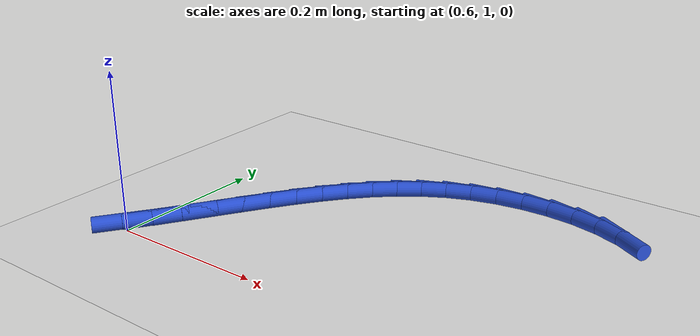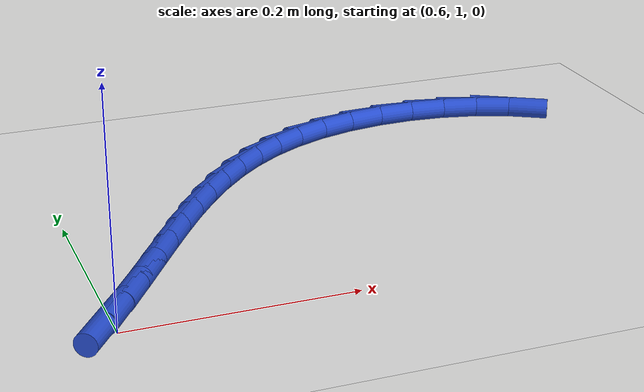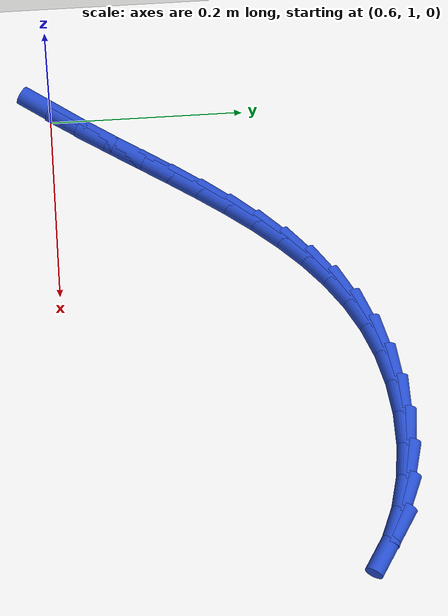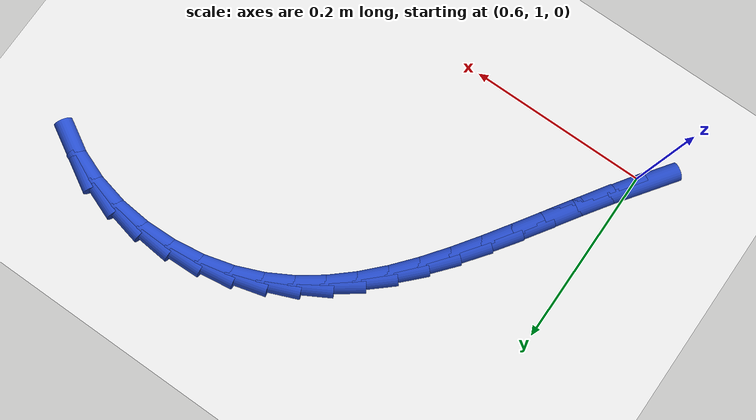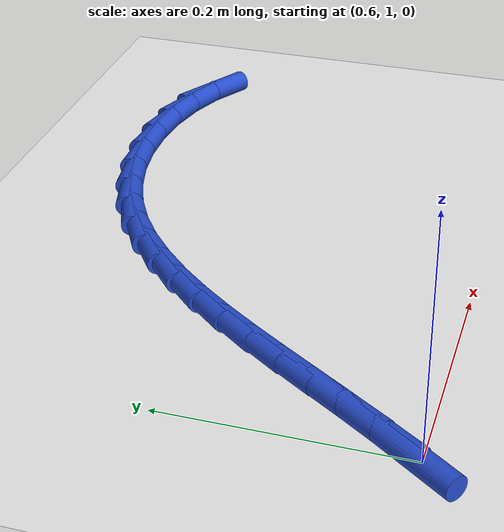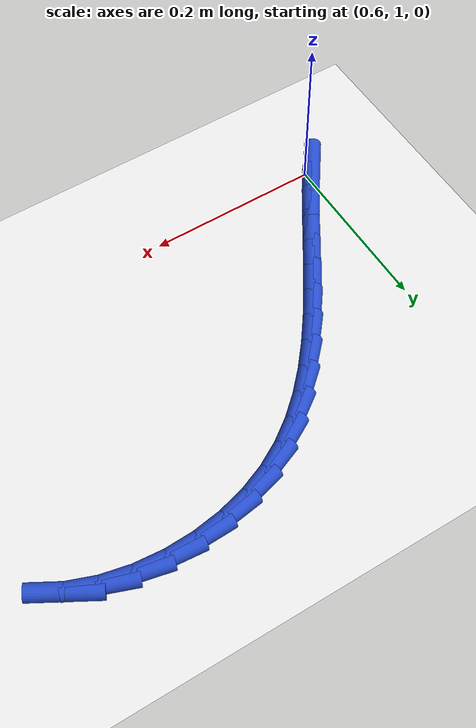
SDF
<sdf version="1.6">
 <world name="default">
  <model name="ground_plane">
   <static>1</static>
   <link name="link">
    <collision name="collision">
     <geometry><plane><normal>0 0 1</normal><size>100 100</size></plane></geometry>
     <surface><friction><ode><mu>100</mu><mu2>50</mu2></ode></friction></surface>
    </collision>
    <visual name="visual">
     <cast_shadows>0</cast_shadows>
     <geometry><plane><normal>0 0 1</normal><size>100 100</size></plane></geometry>
     <material>
      <script><uri>file://media/materials/scripts/gazebo.material</uri><name>Gazebo/WhiteGlow</name></script>
     </material>
    </visual>
   </link>
  </model>
  <model name="line">
   <link name="link_36">
    <pose>0.5934363363102734 1.0043362658631592 0.01 0 1.57 0.9493742972569054</pose>
    <collision name="collision">
     <geometry><cylinder><radius>0.01</radius><length>0.08</length></cylinder></geometry>
    </collision>
    <visual name="visual">
     <material>
      <script><name>Gazebo/Blue</name><uri>file://media/materials/scripts/gazebo.material</uri></script>
     </material>
     <geometry><cylinder><radius>0.01</radius><length>0.08</length></cylinder></geometry>
    </visual>
   </link>
   <link name="link_37">
    <pose>0.6140284195388198 1.0330938299409567 0.01 0 1.57 0.9768027827212767</pose>
    <collision name="collision">
     <geometry><cylinder><radius>0.01</radius><length>0.08</length></cylinder></geometry>
    </collision>
    <visual name="visual">
     <material>
      <script><name>Gazebo/Blue</name><uri>file://media/materials/scripts/gazebo.material</uri></script>
     </material>
     <geometry><cylinder><radius>0.01</radius><length>0.08</length></cylinder></geometry>
    </visual>
   </link>
   <link name="link_38">
    <pose>0.6339141229431926 1.062538643202508 0.01 0 1.57 0.9916264712208274</pose>
    <collision name="collision">
     <geometry><cylinder><radius>0.01</radius><length>0.08</length></cylinder></geometry>
    </collision>
    <visual name="visual">
     <material>
      <script><name>Gazebo/Blue</name><uri>file://media/materials/scripts/gazebo.material</uri></script>
     </material>
     <geometry><cylinder><radius>0.01</radius><length>0.08</length></cylinder></geometry>
    </visual>
   </link>
   <link name="link_39">
    <pose>0.653379337859489 1.092302760055811 0.01 0 1.57 0.9940531078447946</pose>
    <collision name="collision">
     <geometry><cylinder><radius>0.01</radius><length>0.08</length></cylinder></geometry>
    </collision>
    <visual name="visual">
     <material>
      <script><name>Gazebo/Blue</name><uri>file://media/materials/scripts/gazebo.material</uri></script>
     </material>
     <geometry><cylinder><radius>0.01</radius><length>0.08</length></cylinder></geometry>
    </visual>
   </link>
   <link name="link_40">
    <pose>0.672709955623805 1.1220182349088634 0.01 0 1.57 0.9839921941714765</pose>
    <collision name="collision">
     <geometry><cylinder><radius>0.01</radius><length>0.08</length></cylinder></geometry>
    </collision>
    <visual name="visual">
     <material>
      <script><name>Gazebo/Blue</name><uri>file://media/materials/scripts/gazebo.material</uri></script>
     </material>
     <geometry><cylinder><radius>0.01</radius><length>0.08</length></cylinder></geometry>
    </visual>
   </link>
   <link name="link_41">
    <pose>0.6921918675722372 1.151317122169663 0.01 0 1.57 0.9610348600286166</pose>
    <collision name="collision">
     <geometry><cylinder><radius>0.01</radius><length>0.08</length></cylinder></geometry>
    </collision>
    <visual name="visual">
     <material>
      <script><name>Gazebo/Blue</name><uri>file://media/materials/scripts/gazebo.material</uri></script>
     </material>
     <geometry><cylinder><radius>0.01</radius><length>0.08</length></cylinder></geometry>
    </visual>
   </link>
   <link name="link_42">
    <pose>0.7121109650408821 1.179831476246207 0.01 0 1.57 0.9244764120487332</pose>
    <collision name="collision">
     <geometry><cylinder><radius>0.01</radius><length>0.08</length></cylinder></geometry>
    </collision>
    <visual name="visual">
     <material>
      <script><name>Gazebo/Blue</name><uri>file://media/materials/scripts/gazebo.material</uri></script>
     </material>
     <geometry><cylinder><radius>0.01</radius><length>0.08</length></cylinder></geometry>
    </visual>
   </link>
   <link name="link_43">
    <pose>0.7327531393658359 1.2071933515464925 0.01 0 1.57 0.8734010545532254</pose>
    <collision name="collision">
     <geometry><cylinder><radius>0.01</radius><length>0.08</length></cylinder></geometry>
    </collision>
    <visual name="visual">
     <material>
      <script><name>Gazebo/Blue</name><uri>file://media/materials/scripts/gazebo.material</uri></script>
     </material>
     <geometry><cylinder><radius>0.01</radius><length>0.08</length></cylinder></geometry>
    </visual>
   </link>
   <link name="link_44">
    <pose>0.7544042818831956 1.233034802478518 0.01 0 1.57 0.8068681818872365</pose>
    <collision name="collision">
     <geometry><cylinder><radius>0.01</radius><length>0.08</length></cylinder></geometry>
    </collision>
    <visual name="visual">
     <material>
      <script><name>Gazebo/Blue</name><uri>file://media/materials/scripts/gazebo.material</uri></script>
     </material>
     <geometry><cylinder><radius>0.01</radius><length>0.08</length></cylinder></geometry>
    </visual>
   </link>
   <link name="link_45">
    <pose>0.7773502839290571 1.2569878834502801 0.01 0 1.57 0.7242505144768826</pose>
    <collision name="collision">
     <geometry><cylinder><radius>0.01</radius><length>0.08</length></cylinder></geometry>
    </collision>
    <visual name="visual">
     <material>
      <script><name>Gazebo/Blue</name><uri>file://media/materials/scripts/gazebo.material</uri></script>
     </material>
     <geometry><cylinder><radius>0.01</radius><length>0.08</length></cylinder></geometry>
    </visual>
   </link>
   <link name="link_46">
    <pose>0.8018770368395173 1.278684648869777 0.01 0 1.57 0.6257491263448781</pose>
    <collision name="collision">
     <geometry><cylinder><radius>0.01</radius><length>0.08</length></cylinder></geometry>
    </collision>
    <visual name="visual">
     <material>
      <script><name>Gazebo/Blue</name><uri>file://media/materials/scripts/gazebo.material</uri></script>
     </material>
     <geometry><cylinder><radius>0.01</radius><length>0.08</length></cylinder></geometry>
    </visual>
   </link>
   <link name="link_47">
    <pose>0.8282704319506725 1.2977571531450058 0.01 0 1.57 0.5130069648264336</pose>
    <collision name="collision">
     <geometry><cylinder><radius>0.01</radius><length>0.08</length></cylinder></geometry>
    </collision>
    <visual name="visual">
     <material>
      <script><name>Gazebo/Blue</name><uri>file://media/materials/scripts/gazebo.material</uri></script>
     </material>
     <geometry><cylinder><radius>0.01</radius><length>0.08</length></cylinder></geometry>
    </visual>
   </link>
   <link name="link_48">
    <pose>0.856816360598619 1.3138374506839645 0.01 0 1.57 0.38958705937239546</pose>
    <collision name="collision">
     <geometry><cylinder><radius>0.01</radius><length>0.08</length></cylinder></geometry>
    </collision>
    <visual name="visual">
     <material>
      <script><name>Gazebo/Blue</name><uri>file://media/materials/scripts/gazebo.material</uri></script>
     </material>
     <geometry><cylinder><radius>0.01</radius><length>0.08</length></cylinder></geometry>
    </visual>
   </link>
   <link name="link_49">
    <pose>0.8877986054079618 1.3265579016812616 0.01 0 1.57 0.26474297526489365</pose>
    <collision name="collision">
     <geometry><cylinder><radius>0.01</radius><length>0.08</length></cylinder></geometry>
    </collision>
    <visual name="visual">
     <material>
      <script><name>Gazebo/Blue</name><uri>file://media/materials/scripts/gazebo.material</uri></script>
     </material>
     <geometry><cylinder><radius>0.01</radius><length>0.08</length></cylinder></geometry>
    </visual>
   </link>
   <link name="link_50">
    <pose>0.921154980119249 1.3356010356663819 0.01 0 1.57 0.14644475062112777</pose>
    <collision name="collision">
     <geometry><cylinder><radius>0.01</radius><length>0.08</length></cylinder></geometry>
    </collision>
    <visual name="visual">
     <material>
      <script><name>Gazebo/Blue</name><uri>file://media/materials/scripts/gazebo.material</uri></script>
     </material>
     <geometry><cylinder><radius>0.01</radius><length>0.08</length></cylinder></geometry>
    </visual>
   </link>
   <link name="link_51">
    <pose>0.9560959591592424 1.3407548544562895 0.01 0 1.57 0.02989289702175234</pose>
    <collision name="collision">
     <geometry><cylinder><radius>0.01</radius><length>0.08</length></cylinder></geometry>
    </collision>
    <visual name="visual">
     <material>
      <script><name>Gazebo/Blue</name><uri>file://media/materials/scripts/gazebo.material</uri></script>
     </material>
     <geometry><cylinder><radius>0.01</radius><length>0.08</length></cylinder></geometry>
    </visual>
   </link>
   <link name="link_52">
    <pose>0.9917401587339818 1.3418206803312893 0.01 0 1.57 -0.09056647365757871</pose>
    <collision name="collision">
     <geometry><cylinder><radius>0.01</radius><length>0.08</length></cylinder></geometry>
    </collision>
    <visual name="visual">
     <material>
      <script><name>Gazebo/Blue</name><uri>file://media/materials/scripts/gazebo.material</uri></script>
     </material>
     <geometry><cylinder><radius>0.01</radius><length>0.08</length></cylinder></geometry>
    </visual>
   </link>
   <link name="link_53">
    <pose>1.0272061950495066 1.3385998355716857 0.01 0 1.57 -0.22033860987775225</pose>
    <collision name="collision">
     <geometry><cylinder><radius>0.01</radius><length>0.08</length></cylinder></geometry>
    </collision>
    <visual name="visual">
     <material>
      <script><name>Gazebo/Blue</name><uri>file://media/materials/scripts/gazebo.material</uri></script>
     </material>
     <geometry><cylinder><radius>0.01</radius><length>0.08</length></cylinder></geometry>
    </visual>
   </link>
   <link name="link_54">
    <pose>1.0616126843118558 1.3308936424577824 0.01 0 1.57 -0.364581000922915</pose>
    <collision name="collision">
     <geometry><cylinder><radius>0.01</radius><length>0.08</length></cylinder></geometry>
    </collision>
    <visual name="visual">
     <material>
      <script><name>Gazebo/Blue</name><uri>file://media/materials/scripts/gazebo.material</uri></script>
     </material>
     <geometry><cylinder><radius>0.01</radius><length>0.08</length></cylinder></geometry>
    </visual>
   </link>
   <link name="link_55">
    <pose>1.0940782427270697 1.3185034232698842 0.01 0 1.57 -0.5275968643137261</pose>
    <collision name="collision">
     <geometry><cylinder><radius>0.01</radius><length>0.08</length></cylinder></geometry>
    </collision>
    <visual name="visual">
     <material>
      <script><name>Gazebo/Blue</name><uri>file://media/materials/scripts/gazebo.material</uri></script>
     </material>
     <geometry><cylinder><radius>0.01</radius><length>0.08</length></cylinder></geometry>
    </visual>
   </link>
  </model>
 </world>
</sdf>
